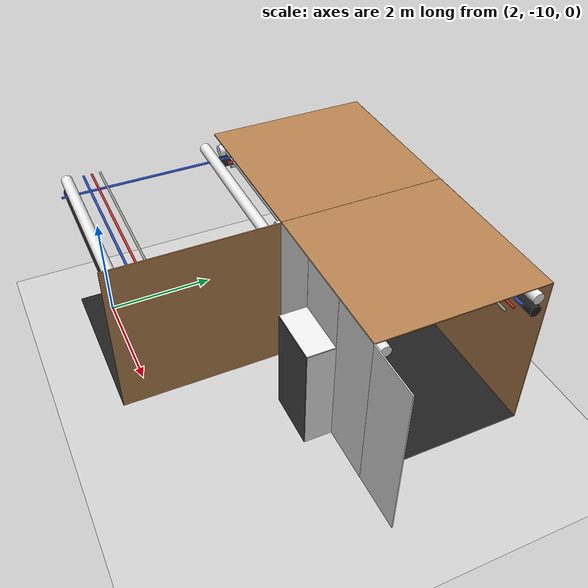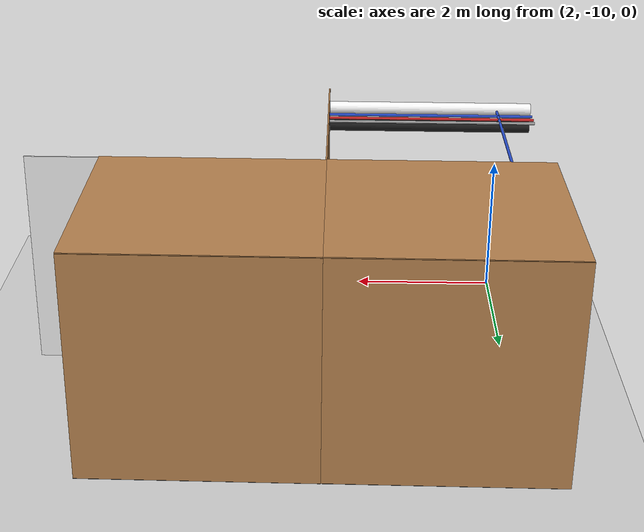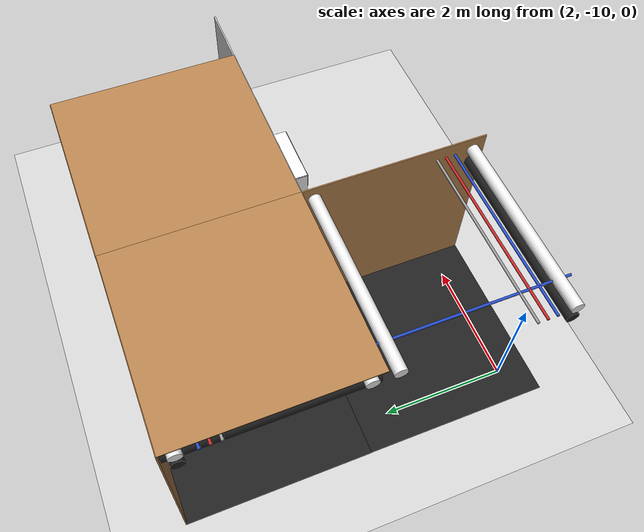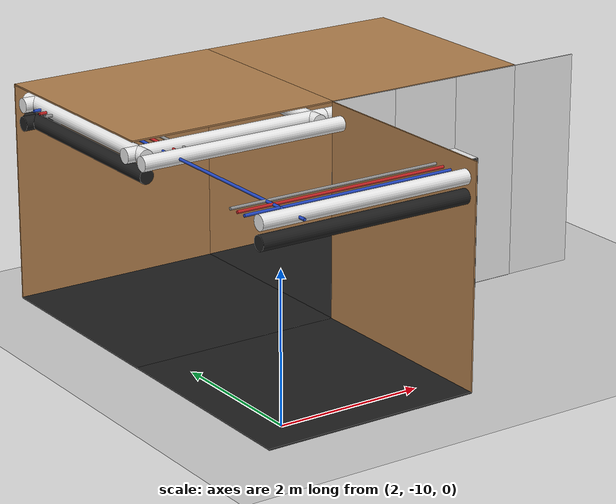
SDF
<sdf version="1.6">
 <world name="default">
  <model name="ground_plane">
   <static>1</static>
   <link name="link">
    <collision name="collision">
     <geometry><plane><normal>0 0 1</normal><size>200 200</size></plane></geometry>
     <surface><friction><ode><mu>100</mu><mu2>50</mu2></ode></friction></surface>
    </collision>
    <visual name="visual">
     <cast_shadows>0</cast_shadows>
     <geometry><plane><normal>0 0 1</normal><size>200 200</size></plane></geometry>
     <material>
      <script><uri>file://media/materials/scripts/gazebo.material</uri><name>Gazebo/Grey</name></script>
     </material>
    </visual>
   </link>
  </model>
  <model name="wall_left_front_left_3_-2_0_1">
   <static>1</static>
   <pose>8.0 -7.5 1.5 0.0 0.0 3.14</pose>
   <link name="link">
    <collision name="collision"><geometry><box><size>1.0 0.02 3</size></box></geometry></collision>
    <visual name="visual">
     <material>
      <script><name>Gazebo/White</name><uri>file://media/materials/scripts/gazebo.material</uri></script>
     </material>
     <geometry><box><size>1.0 0.02 3</size></box></geometry>
    </visual>
   </link>
  </model>
  <model name="wall_right_2_-2_0_1">
   <static>1</static>
   <pose>6.0 -4.5 1.5 0.0 0.0 3.14</pose>
   <link name="link">
    <collision name="collision"><geometry><box><size>3 0.02 3</size></box></geometry></collision>
    <visual name="visual">
     <material>
      <script><name>Gazebo/Wood</name><uri>file://media/materials/scripts/gazebo.material</uri></script>
     </material>
     <geometry><box><size>3 0.02 3</size></box></geometry>
    </visual>
   </link>
  </model>
  <model name="wall_top_2_-2_0_1">
   <static>1</static>
   <pose>6.0 -6.0 3.0 1.57 0.0 1.57</pose>
   <link name="link">
    <collision name="collision"><geometry><box><size>3 0.02 3</size></box></geometry></collision>
    <visual name="visual">
     <material>
      <script><name>Gazebo/Wood</name><uri>file://media/materials/scripts/gazebo.material</uri></script>
     </material>
     <geometry><box><size>3 0.02 3</size></box></geometry>
    </visual>
   </link>
  </model>
  <model name="white_pipe_left_2_-2_0_1">
   <static>1</static>
   <pose>6.0 -6.0 2.76 0.0 0.0 1.57</pose>
   <link name="link_0">
    <visual name="visual">
     <pose>-1.3 0 0 1.57 0 0</pose>
     <geometry><cylinder><radius>0.1</radius><length>3</length></cylinder></geometry>
     <material>
      <script><uri>file://media/materials/scripts/gazebo.material</uri><name>Gazebo/White</name></script>
     </material>
    </visual>
    <collision name="collision">
     <pose>-1.3 0 0 1.57 0 0</pose>
     <geometry><cylinder><radius>0.1</radius><length>3</length></cylinder></geometry>
    </collision>
   </link>
  </model>
  <model name="white_pipe_right_2_-2_0_1">
   <static>1</static>
   <pose>6.0 -6.0 2.76 0.0 0.0 1.57</pose>
   <link name="link_0">
    <visual name="visual">
     <pose>1.3 0 0 1.57 0 0</pose>
     <geometry><cylinder><radius>0.1</radius><length>3</length></cylinder></geometry>
     <material>
      <script><uri>file://media/materials/scripts/gazebo.material</uri><name>Gazebo/White</name></script>
     </material>
    </visual>
    <collision name="collision">
     <pose>1.3 0 0 1.57 0 0</pose>
     <geometry><cylinder><radius>0.1</radius><length>3</length></cylinder></geometry>
    </collision>
   </link>
  </model>
  <model name="black_pipe_right_2_-2_0_1">
   <static>1</static>
   <pose>6.0 -6.0 2.76 0.0 0.0 1.57</pose>
   <link name="link_0">
    <visual name="visual">
     <pose>1.3 0 -0.25 1.57 0 0</pose>
     <geometry><cylinder><radius>0.1</radius><length>3</length></cylinder></geometry>
     <material>
      <script><uri>file://media/materials/scripts/gazebo.material</uri><name>Gazebo/Black</name></script>
     </material>
    </visual>
    <collision name="collision">
     <pose>1.3 0 -0.25 1.57 0 0</pose>
     <geometry><cylinder><radius>0.1</radius><length>3</length></cylinder></geometry>
    </collision>
   </link>
  </model>
  <model name="grey_pipe_right_2_-2_0_1">
   <static>1</static>
   <pose>6.0 -6.0 2.76 0.0 0.0 1.57</pose>
   <link name="link_0">
    <visual name="visual">
     <pose>0.7 0 0 1.57 0 0</pose>
     <geometry><cylinder><radius>0.02</radius><length>3</length></cylinder></geometry>
     <material>
      <script><uri>file://media/materials/scripts/gazebo.material</uri><name>Gazebo/Grey</name></script>
     </material>
    </visual>
    <collision name="collision">
     <pose>0.7 0 0 1.57 0 0</pose>
     <geometry><cylinder><radius>0.02</radius><length>3</length></cylinder></geometry>
    </collision>
   </link>
  </model>
  <model name="red_pipe_right_2_-2_0_1">
   <static>1</static>
   <pose>6.0 -6.0 2.76 0.0 0.0 1.57</pose>
   <link name="link_0">
    <visual name="visual">
     <pose>0.85 0 0 1.57 0 0</pose>
     <geometry><cylinder><radius>0.02</radius><length>3</length></cylinder></geometry>
     <material>
      <script><uri>file://media/materials/scripts/gazebo.material</uri><name>Gazebo/Red</name></script>
     </material>
    </visual>
    <collision name="collision">
     <pose>0.85 0 0 1.57 0 0</pose>
     <geometry><cylinder><radius>0.02</radius><length>3</length></cylinder></geometry>
    </collision>
   </link>
  </model>
  <model name="blue_pipe_right_2_-2_0_1">
   <static>1</static>
   <pose>6.0 -6.0 2.76 0.0 0.0 1.57</pose>
   <link name="link_0">
    <visual name="visual">
     <pose>1 0 0 1.57 0 0</pose>
     <geometry><cylinder><radius>0.02</radius><length>3</length></cylinder></geometry>
     <material>
      <script><uri>file://media/materials/scripts/gazebo.material</uri><name>Gazebo/Blue</name></script>
     </material>
    </visual>
    <collision name="collision">
     <pose>1 0 0 1.57 0 0</pose>
     <geometry><cylinder><radius>0.02</radius><length>3</length></cylinder></geometry>
    </collision>
   </link>
  </model>
  <model name="wall_bottom_2_-2_0_1">
   <static>1</static>
   <pose>6.0 -6.0 0.0 0.0 0.0 1.57</pose>
   <link name="link">
    <collision name="collision"><geometry><box><size>3 3 0.02</size></box></geometry></collision>
    <visual name="visual">
     <material>
      <script><name>Gazebo/Black</name><uri>file://media/materials/scripts/gazebo.material</uri></script>
     </material>
     <geometry><box><size>3 3 0.02</size></box></geometry>
    </visual>
   </link>
  </model>
  <model name="wall_left_front_left_2_-2_0_1">
   <static>1</static>
   <pose>5.0 -7.5 1.5 0.0 0.0 3.14</pose>
   <link name="link">
    <collision name="collision"><geometry><box><size>1.0 0.02 3</size></box></geometry></collision>
    <visual name="visual">
     <material>
      <script><name>Gazebo/White</name><uri>file://media/materials/scripts/gazebo.material</uri></script>
     </material>
     <geometry><box><size>1.0 0.02 3</size></box></geometry>
    </visual>
   </link>
  </model>
  <model name="wall_left_front_right_2_-2_0_1">
   <static>1</static>
   <pose>7.0 -7.5 1.5 0.0 0.0 3.14</pose>
   <link name="link">
    <collision name="collision"><geometry><box><size>1.0 0.02 3</size></box></geometry></collision>
    <visual name="visual">
     <material>
      <script><name>Gazebo/White</name><uri>file://media/materials/scripts/gazebo.material</uri></script>
     </material>
     <geometry><box><size>1.0 0.02 3</size></box></geometry>
    </visual>
   </link>
  </model>
  <model name="wall_left_front_up_2_-2_0_1">
   <static>1</static>
   <pose>6.0 -7.5 2.5 0.0 0.0 3.14</pose>
   <link name="link">
    <collision name="collision"><geometry><box><size>1.0 0.02 1</size></box></geometry></collision>
    <visual name="visual">
     <material>
      <script><name>Gazebo/White</name><uri>file://media/materials/scripts/gazebo.material</uri></script>
     </material>
     <geometry><box><size>1.0 0.02 1</size></box></geometry>
    </visual>
   </link>
  </model>
  <model name="wall_left_inside_back_2_-2_0_1">
   <static>1</static>
   <pose>6.0 -8.0 1.0 0.0 0.0 3.14</pose>
   <link name="link">
    <collision name="collision"><geometry><box><size>1 0.02 2</size></box></geometry></collision>
    <visual name="visual">
     <material>
      <script><name>Gazebo/DarkGrey</name><uri>file://media/materials/scripts/gazebo.material</uri></script>
     </material>
     <geometry><box><size>1 0.02 2</size></box></geometry>
    </visual>
   </link>
  </model>
  <model name="wall_left_inside_left_2_-2_0_1">
   <static>1</static>
   <pose>5.5 -7.75 1.0 0.0 0.0 1.57</pose>
   <link name="link">
    <collision name="collision"><geometry><box><size>0.5 0.02 2</size></box></geometry></collision>
    <visual name="visual">
     <material>
      <script><name>Gazebo/White</name><uri>file://media/materials/scripts/gazebo.material</uri></script>
     </material>
     <geometry><box><size>0.5 0.02 2</size></box></geometry>
    </visual>
   </link>
  </model>
  <model name="wall_left_inside_right_2_-2_0_1">
   <static>1</static>
   <pose>6.5 -7.75 1.0 0.0 0.0 1.57</pose>
   <link name="link">
    <collision name="collision"><geometry><box><size>0.5 0.02 2</size></box></geometry></collision>
    <visual name="visual">
     <material>
      <script><name>Gazebo/White</name><uri>file://media/materials/scripts/gazebo.material</uri></script>
     </material>
     <geometry><box><size>0.5 0.02 2</size></box></geometry>
    </visual>
   </link>
  </model>
  <model name="wall_left_inside_top_2_-2_0_1">
   <static>1</static>
   <pose>6.0 -7.75 2.0 1.57 0.0 3.14</pose>
   <link name="link">
    <collision name="collision"><geometry><box><size>1 0.02 0.5</size></box></geometry></collision>
    <visual name="visual">
     <material>
      <script><name>Gazebo/White</name><uri>file://media/materials/scripts/gazebo.material</uri></script>
     </material>
     <geometry><box><size>1 0.02 0.5</size></box></geometry>
    </visual>
   </link>
  </model>
  <model name="wall_right_1_-2_0_3">
   <static>1</static>
   <pose>3.0 -4.5 1.5 0.0 0.0 3.14</pose>
   <link name="link">
    <collision name="collision"><geometry><box><size>3 0.02 3</size></box></geometry></collision>
    <visual name="visual">
     <material>
      <script><name>Gazebo/Wood</name><uri>file://media/materials/scripts/gazebo.material</uri></script>
     </material>
     <geometry><box><size>3 0.02 3</size></box></geometry>
    </visual>
   </link>
  </model>
  <model name="wall_top_1_-2_0_3">
   <static>1</static>
   <pose>3.0 -6.0 3.0 1.57 0.0 1.57</pose>
   <link name="link">
    <collision name="collision"><geometry><box><size>3 0.02 3</size></box></geometry></collision>
    <visual name="visual">
     <material>
      <script><name>Gazebo/Wood</name><uri>file://media/materials/scripts/gazebo.material</uri></script>
     </material>
     <geometry><box><size>3 0.02 3</size></box></geometry>
    </visual>
   </link>
  </model>
  <model name="white_pipe_left_1_-2_0_3">
   <static>1</static>
   <pose>3.0 -6.0 2.76 0.0 0.0 1.57</pose>
   <link name="link_0">
    <visual name="visual">
     <pose>-1.3 0 0 1.57 0 0</pose>
     <geometry><cylinder><radius>0.1</radius><length>3</length></cylinder></geometry>
     <material>
      <script><uri>file://media/materials/scripts/gazebo.material</uri><name>Gazebo/White</name></script>
     </material>
    </visual>
    <collision name="collision">
     <pose>-1.3 0 0 1.57 0 0</pose>
     <geometry><cylinder><radius>0.1</radius><length>3</length></cylinder></geometry>
    </collision>
   </link>
  </model>
  <model name="white_pipe_right_1_-2_0_3">
   <static>1</static>
   <pose>3.0 -6.0 2.76 0.0 0.0 1.57</pose>
   <link name="link_0">
    <visual name="visual">
     <pose>1.3 0 0 1.57 0 0</pose>
     <geometry><cylinder><radius>0.1</radius><length>3</length></cylinder></geometry>
     <material>
      <script><uri>file://media/materials/scripts/gazebo.material</uri><name>Gazebo/White</name></script>
     </material>
    </visual>
    <collision name="collision">
     <pose>1.3 0 0 1.57 0 0</pose>
     <geometry><cylinder><radius>0.1</radius><length>3</length></cylinder></geometry>
    </collision>
   </link>
  </model>
  <model name="black_pipe_right_1_-2_0_3">
   <static>1</static>
   <pose>3.0 -6.0 2.76 0.0 0.0 1.57</pose>
   <link name="link_0">
    <visual name="visual">
     <pose>1.3 0 -0.25 1.57 0 0</pose>
     <geometry><cylinder><radius>0.1</radius><length>3</length></cylinder></geometry>
     <material>
      <script><uri>file://media/materials/scripts/gazebo.material</uri><name>Gazebo/Black</name></script>
     </material>
    </visual>
    <collision name="collision">
     <pose>1.3 0 -0.25 1.57 0 0</pose>
     <geometry><cylinder><radius>0.1</radius><length>3</length></cylinder></geometry>
    </collision>
   </link>
  </model>
  <model name="grey_pipe_right_1_-2_0_3">
   <static>1</static>
   <pose>3.0 -6.0 2.76 0.0 0.0 1.57</pose>
   <link name="link_0">
    <visual name="visual">
     <pose>0.7 0 0 1.57 0 0</pose>
     <geometry><cylinder><radius>0.02</radius><length>3</length></cylinder></geometry>
     <material>
      <script><uri>file://media/materials/scripts/gazebo.material</uri><name>Gazebo/Grey</name></script>
     </material>
    </visual>
    <collision name="collision">
     <pose>0.7 0 0 1.57 0 0</pose>
     <geometry><cylinder><radius>0.02</radius><length>3</length></cylinder></geometry>
    </collision>
   </link>
  </model>
  <model name="red_pipe_right_1_-2_0_3">
   <static>1</static>
   <pose>3.0 -6.0 2.76 0.0 0.0 1.57</pose>
   <link name="link_0">
    <visual name="visual">
     <pose>0.85 0 0 1.57 0 0</pose>
     <geometry><cylinder><radius>0.02</radius><length>3</length></cylinder></geometry>
     <material>
      <script><uri>file://media/materials/scripts/gazebo.material</uri><name>Gazebo/Red</name></script>
     </material>
    </visual>
    <collision name="collision">
     <pose>0.85 0 0 1.57 0 0</pose>
     <geometry><cylinder><radius>0.02</radius><length>3</length></cylinder></geometry>
    </collision>
   </link>
  </model>
  <model name="blue_pipe_right_1_-2_0_3">
   <static>1</static>
   <pose>3.0 -6.0 2.76 0.0 0.0 1.57</pose>
   <link name="link_0">
    <visual name="visual">
     <pose>1 0 0 1.57 0 0</pose>
     <geometry><cylinder><radius>0.02</radius><length>3</length></cylinder></geometry>
     <material>
      <script><uri>file://media/materials/scripts/gazebo.material</uri><name>Gazebo/Blue</name></script>
     </material>
    </visual>
    <collision name="collision">
     <pose>1 0 0 1.57 0 0</pose>
     <geometry><cylinder><radius>0.02</radius><length>3</length></cylinder></geometry>
    </collision>
   </link>
  </model>
  <model name="white_pipe_left_1_1_-2_0_3">
   <static>1</static>
   <pose>3.0 -6.0 2.76 0.0 0.0 3.14</pose>
   <link name="link_0">
    <visual name="visual">
     <pose>-1.3 0 0 1.57 0 0</pose>
     <geometry><cylinder><radius>0.1</radius><length>3</length></cylinder></geometry>
     <material>
      <script><uri>file://media/materials/scripts/gazebo.material</uri><name>Gazebo/White</name></script>
     </material>
    </visual>
    <collision name="collision">
     <pose>-1.3 0 0 1.57 0 0</pose>
     <geometry><cylinder><radius>0.1</radius><length>3</length></cylinder></geometry>
    </collision>
   </link>
  </model>
  <model name="white_pipe_right_1_1_-2_0_3">
   <static>1</static>
   <pose>3.0 -6.0 2.76 0.0 0.0 3.14</pose>
   <link name="link_0">
    <visual name="visual">
     <pose>1.3 0 0 1.57 0 0</pose>
     <geometry><cylinder><radius>0.1</radius><length>3</length></cylinder></geometry>
     <material>
      <script><uri>file://media/materials/scripts/gazebo.material</uri><name>Gazebo/White</name></script>
     </material>
    </visual>
    <collision name="collision">
     <pose>1.3 0 0 1.57 0 0</pose>
     <geometry><cylinder><radius>0.1</radius><length>3</length></cylinder></geometry>
    </collision>
   </link>
  </model>
  <model name="black_pipe_right_1_1_-2_0_3">
   <static>1</static>
   <pose>3.0 -6.0 2.76 0.0 0.0 3.14</pose>
   <link name="link_0">
    <visual name="visual">
     <pose>1.3 0 -0.25 1.57 0 0</pose>
     <geometry><cylinder><radius>0.1</radius><length>3</length></cylinder></geometry>
     <material>
      <script><uri>file://media/materials/scripts/gazebo.material</uri><name>Gazebo/Black</name></script>
     </material>
    </visual>
    <collision name="collision">
     <pose>1.3 0 -0.25 1.57 0 0</pose>
     <geometry><cylinder><radius>0.1</radius><length>3</length></cylinder></geometry>
    </collision>
   </link>
  </model>
  <model name="grey_pipe_right_1_1_-2_0_3">
   <static>1</static>
   <pose>3.0 -6.0 2.76 0.0 0.0 3.14</pose>
   <link name="link_0">
    <visual name="visual">
     <pose>0.7 0 0 1.57 0 0</pose>
     <geometry><cylinder><radius>0.02</radius><length>3</length></cylinder></geometry>
     <material>
      <script><uri>file://media/materials/scripts/gazebo.material</uri><name>Gazebo/Grey</name></script>
     </material>
    </visual>
    <collision name="collision">
     <pose>0.7 0 0 1.57 0 0</pose>
     <geometry><cylinder><radius>0.02</radius><length>3</length></cylinder></geometry>
    </collision>
   </link>
  </model>
  <model name="red_pipe_right_1_1_-2_0_3">
   <static>1</static>
   <pose>3.0 -6.0 2.76 0.0 0.0 3.14</pose>
   <link name="link_0">
    <visual name="visual">
     <pose>0.85 0 0 1.57 0 0</pose>
     <geometry><cylinder><radius>0.02</radius><length>3</length></cylinder></geometry>
     <material>
      <script><uri>file://media/materials/scripts/gazebo.material</uri><name>Gazebo/Red</name></script>
     </material>
    </visual>
    <collision name="collision">
     <pose>0.85 0 0 1.57 0 0</pose>
     <geometry><cylinder><radius>0.02</radius><length>3</length></cylinder></geometry>
    </collision>
   </link>
  </model>
  <model name="blue_pipe_right_1_1_-2_0_3">
   <static>1</static>
   <pose>3.0 -6.0 2.76 0.0 0.0 3.14</pose>
   <link name="link_0">
    <visual name="visual">
     <pose>1 0 0 1.57 0 0</pose>
     <geometry><cylinder><radius>0.02</radius><length>3</length></cylinder></geometry>
     <material>
      <script><uri>file://media/materials/scripts/gazebo.material</uri><name>Gazebo/Blue</name></script>
     </material>
    </visual>
    <collision name="collision">
     <pose>1 0 0 1.57 0 0</pose>
     <geometry><cylinder><radius>0.02</radius><length>3</length></cylinder></geometry>
    </collision>
   </link>
  </model>
  <model name="wall_bottom_1_-2_0_3">
   <static>1</static>
   <pose>3.0 -6.0 0.0 0.0 0.0 1.57</pose>
   <link name="link">
    <collision name="collision"><geometry><box><size>3 3 0.02</size></box></geometry></collision>
    <visual name="visual">
     <material>
      <script><name>Gazebo/Black</name><uri>file://media/materials/scripts/gazebo.material</uri></script>
     </material>
     <geometry><box><size>3 3 0.02</size></box></geometry>
    </visual>
   </link>
  </model>
  <model name="wall_left_1_-3_0_2">
   <static>1</static>
   <pose>4.5 -9.0 1.5 0.0 0.0 4.71</pose>
   <link name="link">
    <collision name="collision"><geometry><box><size>3 0.02 3</size></box></geometry></collision>
    <visual name="visual">
     <material>
      <script><name>Gazebo/Wood</name><uri>file://media/materials/scripts/gazebo.material</uri></script>
     </material>
     <geometry><box><size>3 0.02 3</size></box></geometry>
    </visual>
   </link>
  </model>
  <model name="blue_pipe_right_1_-3_0_2">
   <static>1</static>
   <pose>3.0 -9.0 2.76 0.0 0.0 3.14</pose>
   <link name="link_0">
    <visual name="visual">
     <pose>1 0 0 1.57 0 0</pose>
     <geometry><cylinder><radius>0.02</radius><length>3</length></cylinder></geometry>
     <material>
      <script><uri>file://media/materials/scripts/gazebo.material</uri><name>Gazebo/Blue</name></script>
     </material>
    </visual>
    <collision name="collision">
     <pose>1 0 0 1.57 0 0</pose>
     <geometry><cylinder><radius>0.02</radius><length>3</length></cylinder></geometry>
    </collision>
   </link>
  </model>
  <model name="white_pipe_left_1_1_-3_0_2">
   <static>1</static>
   <pose>3.0 -9.0 2.76 0.0 0.0 4.71</pose>
   <link name="link_0">
    <visual name="visual">
     <pose>-1.3 0 0 1.57 0 0</pose>
     <geometry><cylinder><radius>0.1</radius><length>3</length></cylinder></geometry>
     <material>
      <script><uri>file://media/materials/scripts/gazebo.material</uri><name>Gazebo/White</name></script>
     </material>
    </visual>
    <collision name="collision">
     <pose>-1.3 0 0 1.57 0 0</pose>
     <geometry><cylinder><radius>0.1</radius><length>3</length></cylinder></geometry>
    </collision>
   </link>
  </model>
  <model name="white_pipe_right_1_1_-3_0_2">
   <static>1</static>
   <pose>3.0 -9.0 2.76 0.0 0.0 4.71</pose>
   <link name="link_0">
    <visual name="visual">
     <pose>1.3 0 0 1.57 0 0</pose>
     <geometry><cylinder><radius>0.1</radius><length>3</length></cylinder></geometry>
     <material>
      <script><uri>file://media/materials/scripts/gazebo.material</uri><name>Gazebo/White</name></script>
     </material>
    </visual>
    <collision name="collision">
     <pose>1.3 0 0 1.57 0 0</pose>
     <geometry><cylinder><radius>0.1</radius><length>3</length></cylinder></geometry>
    </collision>
   </link>
  </model>
  <model name="black_pipe_right_1_1_-3_0_2">
   <static>1</static>
   <pose>3.0 -9.0 2.76 0.0 0.0 4.71</pose>
   <link name="link_0">
    <visual name="visual">
     <pose>1.3 0 -0.25 1.57 0 0</pose>
     <geometry><cylinder><radius>0.1</radius><length>3</length></cylinder></geometry>
     <material>
      <script><uri>file://media/materials/scripts/gazebo.material</uri><name>Gazebo/Black</name></script>
     </material>
    </visual>
    <collision name="collision">
     <pose>1.3 0 -0.25 1.57 0 0</pose>
     <geometry><cylinder><radius>0.1</radius><length>3</length></cylinder></geometry>
    </collision>
   </link>
  </model>
  <model name="grey_pipe_right_1_1_-3_0_2">
   <static>1</static>
   <pose>3.0 -9.0 2.76 0.0 0.0 4.71</pose>
   <link name="link_0">
    <visual name="visual">
     <pose>0.7 0 0 1.57 0 0</pose>
     <geometry><cylinder><radius>0.02</radius><length>3</length></cylinder></geometry>
     <material>
      <script><uri>file://media/materials/scripts/gazebo.material</uri><name>Gazebo/Grey</name></script>
     </material>
    </visual>
    <collision name="collision">
     <pose>0.7 0 0 1.57 0 0</pose>
     <geometry><cylinder><radius>0.02</radius><length>3</length></cylinder></geometry>
    </collision>
   </link>
  </model>
  <model name="red_pipe_right_1_1_-3_0_2">
   <static>1</static>
   <pose>3.0 -9.0 2.76 0.0 0.0 4.71</pose>
   <link name="link_0">
    <visual name="visual">
     <pose>0.85 0 0 1.57 0 0</pose>
     <geometry><cylinder><radius>0.02</radius><length>3</length></cylinder></geometry>
     <material>
      <script><uri>file://media/materials/scripts/gazebo.material</uri><name>Gazebo/Red</name></script>
     </material>
    </visual>
    <collision name="collision">
     <pose>0.85 0 0 1.57 0 0</pose>
     <geometry><cylinder><radius>0.02</radius><length>3</length></cylinder></geometry>
    </collision>
   </link>
  </model>
  <model name="blue_pipe_right_1_1_-3_0_2">
   <static>1</static>
   <pose>3.0 -9.0 2.76 0.0 0.0 4.71</pose>
   <link name="link_0">
    <visual name="visual">
     <pose>1 0 0 1.57 0 0</pose>
     <geometry><cylinder><radius>0.02</radius><length>3</length></cylinder></geometry>
     <material>
      <script><uri>file://media/materials/scripts/gazebo.material</uri><name>Gazebo/Blue</name></script>
     </material>
    </visual>
    <collision name="collision">
     <pose>1 0 0 1.57 0 0</pose>
     <geometry><cylinder><radius>0.02</radius><length>3</length></cylinder></geometry>
    </collision>
   </link>
  </model>
  <model name="wall_bottom_1_-3_0_2">
   <static>1</static>
   <pose>3.0 -9.0 0.0 0.0 0.0 3.14</pose>
   <link name="link">
    <collision name="collision"><geometry><box><size>3 3 0.02</size></box></geometry></collision>
    <visual name="visual">
     <material>
      <script><name>Gazebo/Black</name><uri>file://media/materials/scripts/gazebo.material</uri></script>
     </material>
     <geometry><box><size>3 3 0.02</size></box></geometry>
    </visual>
   </link>
  </model>
 </world>
</sdf>
